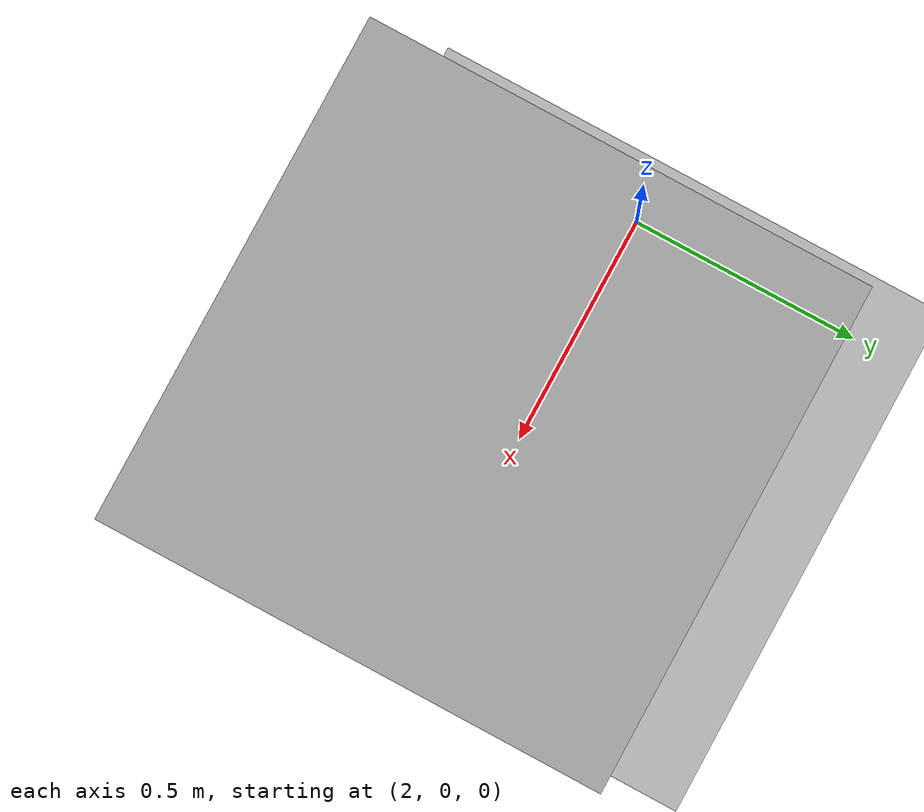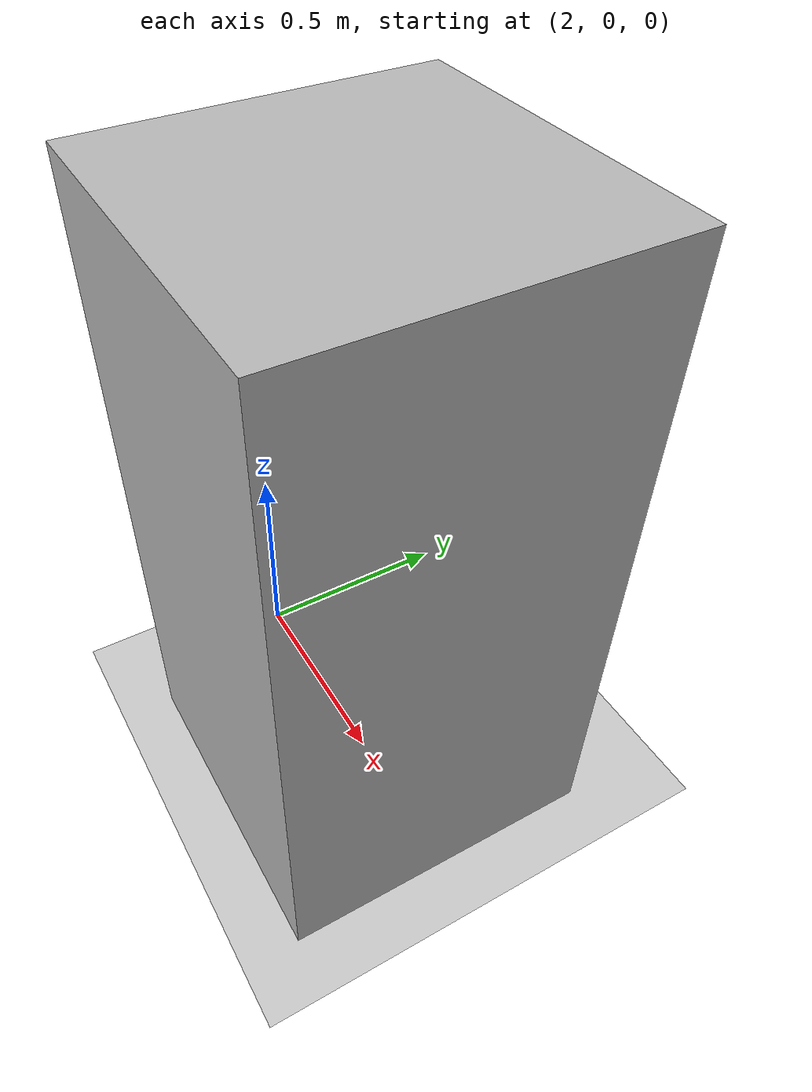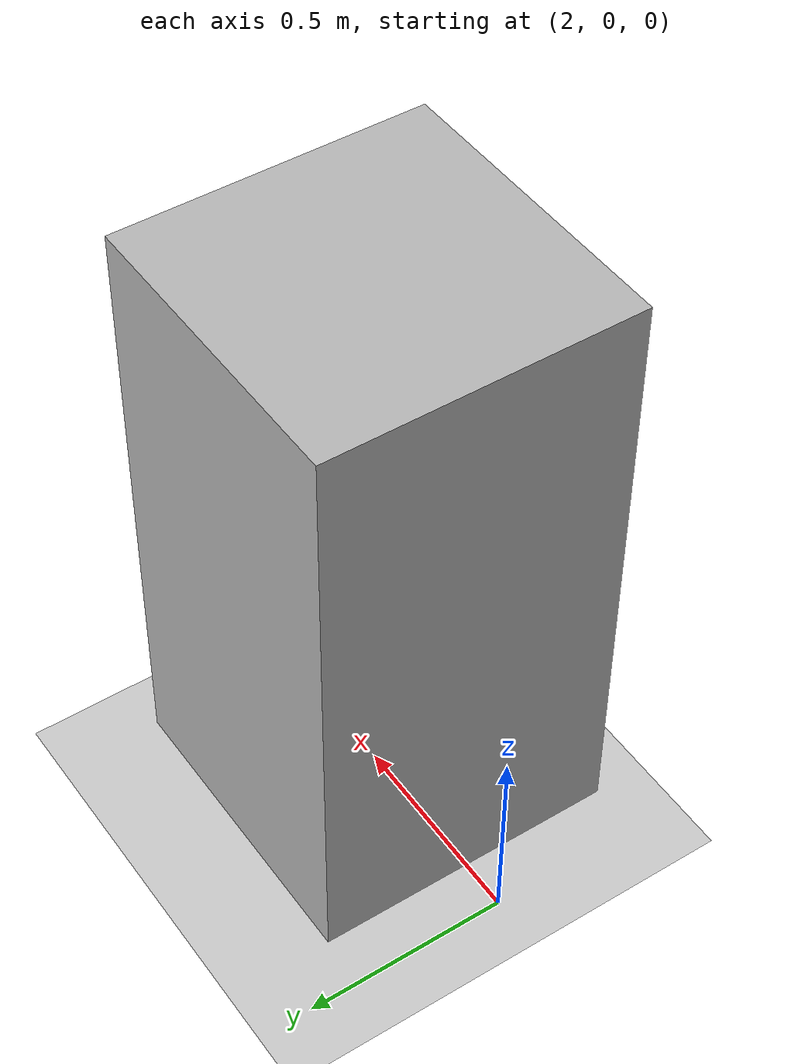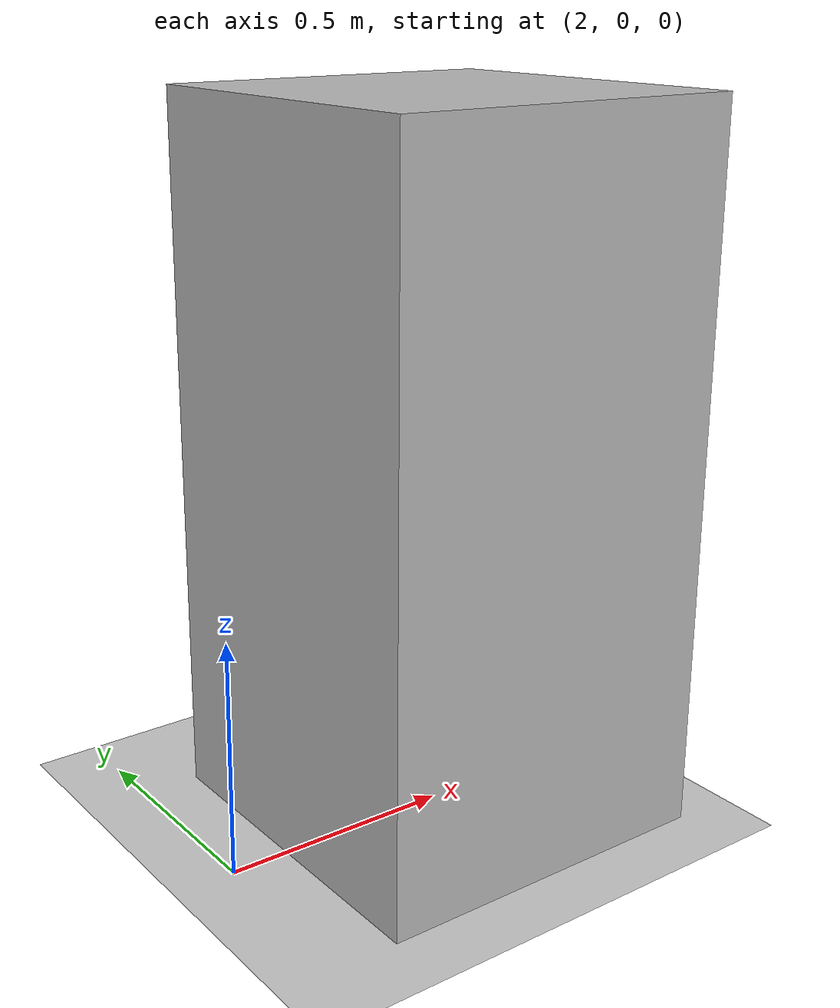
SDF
<?xml version="1.0" ?>
<sdf version="1.4">
  <world name="default">
    <include>
      <uri>model://ground_plane</uri>
    </include>
    <include>
      <uri>model://sun</uri>
    </include>

    <model name="obstacle">
      <static>true</static>
      <pose>2.5 0 0.75 0 0 0</pose>
      <link name="box">
        <collision name="collision">
          <geometry>
            <box>
              <size>0.75 0.75 1.5</size>
            </box>
          </geometry>
        </collision>
        <visual name="visual">
          <geometry>
            <box>
              <size>0.75 0.75 1.5</size>
            </box>
          </geometry>
        </visual>
      </link>
    </model>

    <physics type='ode'>
      <max_step_size>0.001</max_step_size>
      <real_time_factor>1</real_time_factor>
      <real_time_update_rate>1000</real_time_update_rate>
      <gravity>0 0 0</gravity>
    </physics>

  </world>
</sdf>
